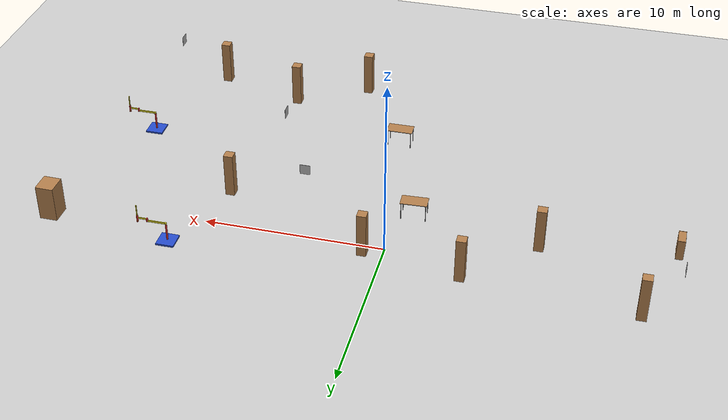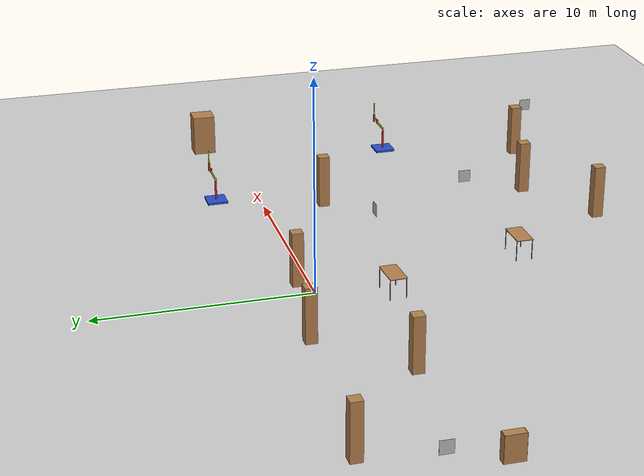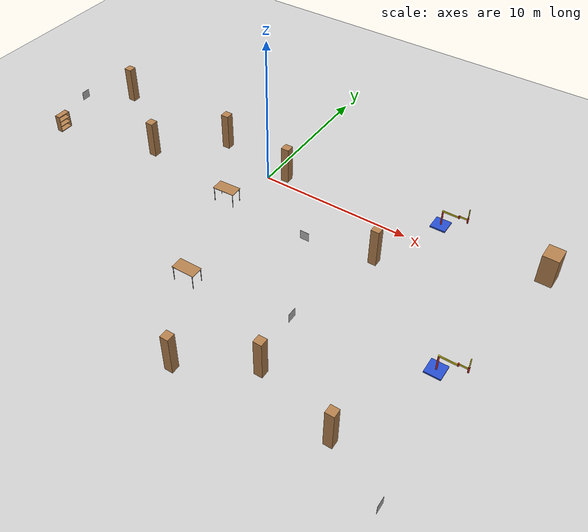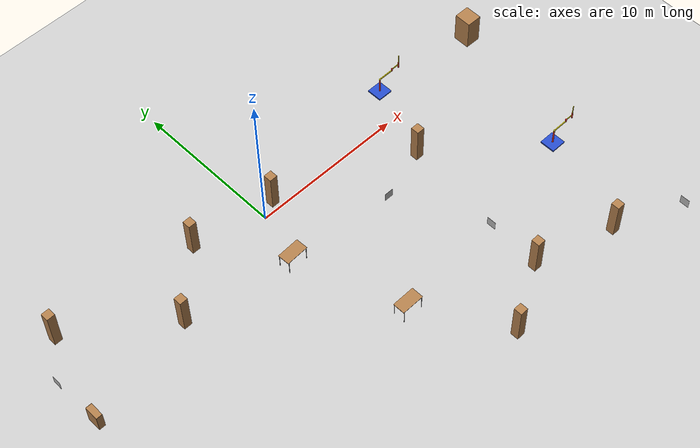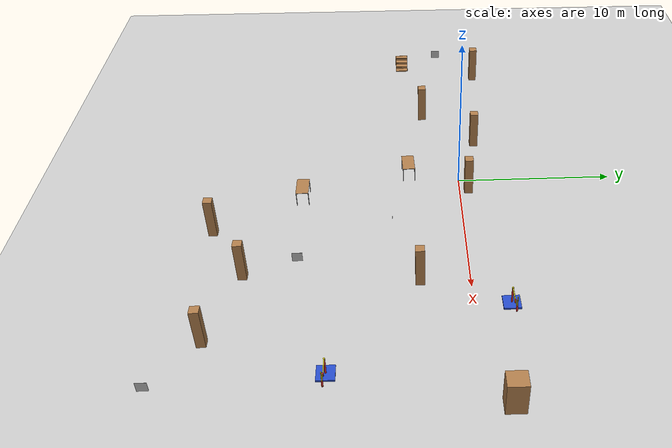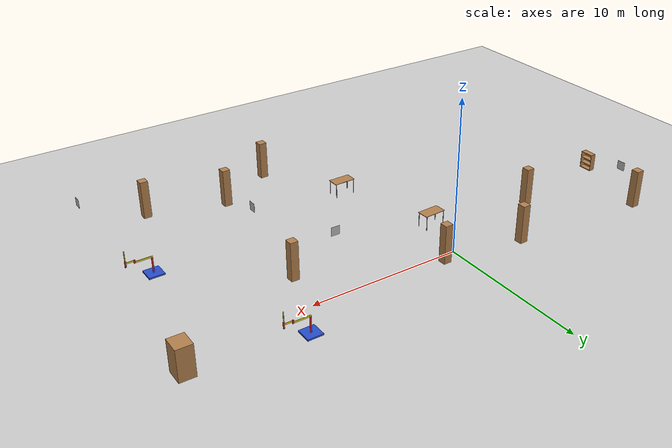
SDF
<sdf version="1.7">
 <world name="default">
  <model name="ground_plane">
   <static>1</static>
   <link name="link">
    <collision name="collision">
     <geometry><plane><normal>0 0 1</normal><size>25 25</size></plane></geometry>
     <surface><friction><ode><mu>100</mu><mu2>50</mu2></ode></friction></surface>
    </collision>
    <visual name="visual">
     <cast_shadows>0</cast_shadows>
     <geometry><plane><normal>0 0 1</normal><size>25 25</size></plane></geometry>
     <material>
      <script><uri>file://media/materials/scripts/gazebo.material</uri><name>Gazebo/Grey</name></script>
     </material>
    </visual>
   </link>
   <link name="startflag">
    <pose>0 0 0.115 0 -0 0</pose>
    <inertial>
     <mass>0.39</mass>
     <inertia><ixx>0.00058</ixx><ixy>0</ixy><ixz>0</ixz><iyy>0.00058</iyy><iyz>0</iyz><izz>0.00019</izz></inertia>
    </inertial>
    <collision name="collision"><geometry><box><size>1 1 0.01</size></box></geometry></collision>
    <visual name="visual">
     <geometry><box><size>1 1 0.01</size></box></geometry>
     <material>
      <script>
       <uri>model://apriltag/materials/scripts</uri>
       <uri>model://apriltag/materials/textures</uri>
       <name>startflag/Diffuse</name>
      </script>
     </material>
    </visual>
   </link>
  </model>
  <model name="table">
   <static>0</static>
   <link name="link">
    <collision name="surface">
     <pose>0 0 1 0 -0 0</pose>
     <geometry><box><size>1.5 0.8 0.03</size></box></geometry>
     <surface><friction><ode><mu>0.6</mu><mu2>0.6</mu2></ode></friction></surface>
    </collision>
    <visual name="visual1">
     <pose>0 0 1 0 -0 0</pose>
     <geometry><box><size>1.5 0.8 0.03</size></box></geometry>
     <material>
      <script><uri>file://media/materials/scripts/gazebo.material</uri><name>Gazebo/Wood</name></script>
     </material>
    </visual>
    <collision name="front_left_leg">
     <pose>0.68 0.38 0.5 0 -0 0</pose>
     <geometry><cylinder><radius>0.02</radius><length>1</length></cylinder></geometry>
    </collision>
    <visual name="front_left_leg">
     <pose>0.68 0.38 0.5 0 -0 0</pose>
     <geometry><cylinder><radius>0.02</radius><length>1</length></cylinder></geometry>
     <material>
      <script><uri>file://media/materials/scripts/gazebo.material</uri><name>Gazebo/Grey</name></script>
     </material>
    </visual>
    <collision name="front_right_leg">
     <pose>0.68 -0.38 0.5 0 -0 0</pose>
     <geometry><cylinder><radius>0.02</radius><length>1</length></cylinder></geometry>
    </collision>
    <visual name="front_right_leg">
     <pose>0.68 -0.38 0.5 0 -0 0</pose>
     <geometry><cylinder><radius>0.02</radius><length>1</length></cylinder></geometry>
     <material>
      <script><uri>file://media/materials/scripts/gazebo.material</uri><name>Gazebo/Grey</name></script>
     </material>
    </visual>
    <collision name="back_right_leg">
     <pose>-0.68 -0.38 0.5 0 -0 0</pose>
     <geometry><cylinder><radius>0.02</radius><length>1</length></cylinder></geometry>
    </collision>
    <visual name="back_right_leg">
     <pose>-0.68 -0.38 0.5 0 -0 0</pose>
     <geometry><cylinder><radius>0.02</radius><length>1</length></cylinder></geometry>
     <material>
      <script><uri>file://media/materials/scripts/gazebo.material</uri><name>Gazebo/Grey</name></script>
     </material>
    </visual>
    <collision name="back_left_leg">
     <pose>-0.68 0.38 0.5 0 -0 0</pose>
     <geometry><cylinder><radius>0.02</radius><length>1</length></cylinder></geometry>
    </collision>
    <visual name="back_left_leg">
     <pose>-0.68 0.38 0.5 0 -0 0</pose>
     <geometry><cylinder><radius>0.02</radius><length>1</length></cylinder></geometry>
     <material>
      <script><uri>file://media/materials/scripts/gazebo.material</uri><name>Gazebo/Grey</name></script>
     </material>
    </visual>
    <inertial>
     <inertia><ixx>1</ixx><ixy>0</ixy><ixz>0</ixz><iyy>1</iyy><iyz>0</iyz><izz>1</izz></inertia>
     <mass>1</mass>
    </inertial>
   </link>
   <pose>-0.865495 -3.31669 -1e-06 0 1e-06 0.048608</pose>
  </model>
  <model name="unit_box_0_clone">
   <pose>1.09392 0.550323 1.29125 0 -1e-06 0.015531</pose>
   <link name="link">
    <inertial>
     <mass>1</mass>
     <inertia>
      <ixx>0.166667</ixx>
      <ixy>0</ixy>
      <ixz>0</ixz>
      <iyy>0.166667</iyy>
      <iyz>0</iyz>
      <izz>0.166667</izz>
     </inertia>
    </inertial>
    <collision name="collision"><geometry><box><size>0.52404 0.528614 2.5825</size></box></geometry></collision>
    <visual name="visual">
     <geometry><box><size>0.52404 0.528614 2.5825</size></box></geometry>
     <material>
      <script><uri>file://media/materials/scripts/gazebo.material</uri><name>Gazebo/Wood</name></script>
     </material>
    </visual>
   </link>
   <static>0</static>
  </model>
  <model name="unit_box_0_clone_2">
   <pose>-7.87568 -2.12895 1.29125 1e-06 1e-06 0.00343</pose>
   <link name="link">
    <inertial>
     <mass>1</mass>
     <inertia>
      <ixx>0.166667</ixx>
      <ixy>0</ixy>
      <ixz>0</ixz>
      <iyy>0.166667</iyy>
      <iyz>0</iyz>
      <izz>0.166667</izz>
     </inertia>
    </inertial>
    <collision name="collision"><geometry><box><size>0.52404 0.528614 2.5825</size></box></geometry></collision>
    <visual name="visual">
     <geometry><box><size>0.52404 0.528614 2.5825</size></box></geometry>
     <material>
      <script><uri>file://media/materials/scripts/gazebo.material</uri><name>Gazebo/Wood</name></script>
     </material>
    </visual>
   </link>
   <static>0</static>
  </model>
  <model name="unit_box_0_clone_3">
   <pose>9.51503 -2.92014 1.29125 1e-06 -0 -0.003339</pose>
   <link name="link">
    <inertial>
     <mass>1</mass>
     <inertia>
      <ixx>0.166667</ixx>
      <ixy>0</ixy>
      <ixz>0</ixz>
      <iyy>0.166667</iyy>
      <iyz>0</iyz>
      <izz>0.166667</izz>
     </inertia>
    </inertial>
    <collision name="collision"><geometry><box><size>0.52404 0.528614 2.5825</size></box></geometry></collision>
    <visual name="visual">
     <geometry><box><size>0.52404 0.528614 2.5825</size></box></geometry>
     <material>
      <script><uri>file://media/materials/scripts/gazebo.material</uri><name>Gazebo/Wood</name></script>
     </material>
    </visual>
   </link>
   <static>0</static>
  </model>
  <model name="static_apriltag_2">
   <link name="link">
    <pose>0 0 0 0 1.57 0</pose>
    <inertial>
     <mass>0.39</mass>
     <inertia><ixx>0.00058</ixx><ixy>0</ixy><ixz>0</ixz><iyy>0.00058</iyy><iyz>0</iyz><izz>0.00019</izz></inertia>
    </inertial>
    <collision name="collision"><geometry><box><size>0.6 0.6 0.01</size></box></geometry></collision>
    <visual name="visual">
     <geometry><box><size>0.6 0.6 0.01</size></box></geometry>
     <material>
      <script>
       <uri>model://apriltag/materials/scripts</uri>
       <uri>model://apriltag/materials/textures</uri>
       <name>apriltag/Diffuse2</name>
      </script>
     </material>
    </visual>
    <gravity>0</gravity>
   </link>
   <pose>17.3807 -16.6611 1.2 0 -0 0</pose>
   <static>0</static>
   <pose>0.80811 0.829943 0 0 -0 0</pose>
  </model>
  <model name="static_apriltag_4">
   <link name="link">
    <pose>0 0 0 0 1.57 0</pose>
    <inertial>
     <mass>0.39</mass>
     <inertia><ixx>0.00058</ixx><ixy>0</ixy><ixz>0</ixz><iyy>0.00058</iyy><iyz>0</iyz><izz>0.00019</izz></inertia>
    </inertial>
    <collision name="collision"><geometry><box><size>0.6 0.6 0.01</size></box></geometry></collision>
    <visual name="visual">
     <geometry><box><size>0.6 0.6 0.01</size></box></geometry>
     <material>
      <script>
       <uri>model://apriltag/materials/scripts</uri>
       <uri>model://apriltag/materials/textures</uri>
       <name>apriltag/Diffuse4</name>
      </script>
     </material>
    </visual>
    <gravity>0</gravity>
   </link>
   <pose>8.38734 -9.90852 1.2 0 -0 0</pose>
   <static>0</static>
   <pose>3.93537 3.29316 0 0 -0 0</pose>
  </model>
  <model name="static_apriltag_6">
   <link name="link">
    <pose>0 0 0 -1.57 1.57 -0</pose>
    <inertial>
     <mass>0.39</mass>
     <inertia><ixx>0.00058</ixx><ixy>0</ixy><ixz>0</ixz><iyy>0.00058</iyy><iyz>0</iyz><izz>0.00019</izz></inertia>
    </inertial>
    <collision name="collision"><geometry><box><size>0.6 0.6 0.01</size></box></geometry></collision>
    <visual name="visual">
     <geometry><box><size>0.6 0.6 0.01</size></box></geometry>
     <material>
      <script>
       <uri>model://apriltag/materials/scripts</uri>
       <uri>model://apriltag/materials/textures</uri>
       <name>apriltag/Diffuse6</name>
      </script>
     </material>
    </visual>
    <gravity>0</gravity>
   </link>
   <pose>5.64278 -4.42191 1.2 0 -0 0</pose>
   <static>0</static>
   <pose>3.43144 4.34187 0 0 -0 0</pose>
  </model>
  <model name="static_apriltag_7">
   <link name="link">
    <pose>0 0 0 0 1.57 0</pose>
    <inertial>
     <mass>0.39</mass>
     <inertia><ixx>0.00058</ixx><ixy>0</ixy><ixz>0</ixz><iyy>0.00058</iyy><iyz>0</iyz><izz>0.00019</izz></inertia>
    </inertial>
    <collision name="collision"><geometry><box><size>0.6 0.6 0.01</size></box></geometry></collision>
    <visual name="visual">
     <geometry><box><size>0.6 0.6 0.01</size></box></geometry>
     <material>
      <script>
       <uri>model://apriltag/materials/scripts</uri>
       <uri>model://apriltag/materials/textures</uri>
       <name>apriltag/Diffuse7</name>
      </script>
     </material>
    </visual>
    <gravity>0</gravity>
   </link>
   <pose>-15.436 -0.772392 1.19904 -1.5708 -0.000796 0</pose>
   <static>0</static>
   <pose>3.12393 4.47604 0 0 -0 0</pose>
  </model>
  <model name="bookshelf">
   <static>1</static>
   <link name="link">
    <inertial><mass>1</mass></inertial>
    <collision name="back">
     <pose>0 0.005 0.6 0 -0 0</pose>
     <geometry><box><size>0.9 0.01 1.2</size></box></geometry>
    </collision>
    <visual name="visual1">
     <pose>0 0.005 0.6 0 -0 0</pose>
     <geometry><box><size>0.9 0.01 1.2</size></box></geometry>
     <material>
      <script><uri>file://media/materials/scripts/gazebo.material</uri><name>Gazebo/Wood</name></script>
     </material>
    </visual>
    <collision name="left_side">
     <pose>0.45 -0.195 0.6 0 -0 0</pose>
     <geometry><box><size>0.02 0.4 1.2</size></box></geometry>
    </collision>
    <visual name="visual2">
     <pose>0.45 -0.195 0.6 0 -0 0</pose>
     <geometry><box><size>0.02 0.4 1.2</size></box></geometry>
     <material>
      <script><uri>file://media/materials/scripts/gazebo.material</uri><name>Gazebo/Wood</name></script>
     </material>
    </visual>
    <collision name="right_side">
     <pose>-0.45 -0.195 0.6 0 -0 0</pose>
     <geometry><box><size>0.02 0.4 1.2</size></box></geometry>
    </collision>
    <visual name="visual3">
     <pose>-0.45 -0.195 0.6 0 -0 0</pose>
     <geometry><box><size>0.02 0.4 1.2</size></box></geometry>
     <material>
      <script><uri>file://media/materials/scripts/gazebo.material</uri><name>Gazebo/Wood</name></script>
     </material>
    </visual>
    <collision name="bottom">
     <pose>0 -0.195 0.03 0 -0 0</pose>
     <geometry><box><size>0.88 0.4 0.06</size></box></geometry>
    </collision>
    <visual name="visual4">
     <pose>0 -0.195 0.03 0 -0 0</pose>
     <geometry><box><size>0.88 0.4 0.06</size></box></geometry>
     <material>
      <script><uri>file://media/materials/scripts/gazebo.material</uri><name>Gazebo/Wood</name></script>
     </material>
    </visual>
    <collision name="top">
     <pose>0 -0.195 1.19 0 -0 0</pose>
     <geometry><box><size>0.88 0.4 0.02</size></box></geometry>
    </collision>
    <visual name="visual5">
     <pose>0 -0.195 1.19 0 -0 0</pose>
     <geometry><box><size>0.88 0.4 0.02</size></box></geometry>
     <material>
      <script><uri>file://media/materials/scripts/gazebo.material</uri><name>Gazebo/Wood</name></script>
     </material>
    </visual>
    <collision name="low_shelf">
     <pose>0 -0.195 0.43 0 -0 0</pose>
     <geometry><box><size>0.88 0.4 0.02</size></box></geometry>
    </collision>
    <visual name="visual6">
     <pose>0 -0.195 0.43 0 -0 0</pose>
     <geometry><box><size>0.88 0.4 0.02</size></box></geometry>
     <material>
      <script><uri>file://media/materials/scripts/gazebo.material</uri><name>Gazebo/Wood</name></script>
     </material>
    </visual>
    <collision name="high_shelf">
     <pose>0 -0.195 0.8 0 -0 0</pose>
     <geometry><box><size>0.88 0.4 0.02</size></box></geometry>
    </collision>
    <visual name="visual7">
     <pose>0 -0.195 0.8 0 -0 0</pose>
     <geometry><box><size>0.88 0.4 0.02</size></box></geometry>
     <material>
      <script><uri>file://media/materials/scripts/gazebo.material</uri><name>Gazebo/Wood</name></script>
     </material>
    </visual>
   </link>
   <pose>-15.3069 -3.46598 0 0 -0 1.57</pose>
  </model>
  <model name="unit_box_clone_clone">
   <pose>18.3733 1.38153 1.01795 1e-06 -1e-06 -0.011633</pose>
   <link name="link">
    <inertial>
     <mass>1</mass>
     <inertia>
      <ixx>0.166667</ixx>
      <ixy>0</ixy>
      <ixz>0</ixz>
      <iyy>0.166667</iyy>
      <iyz>0</iyz>
      <izz>0.166667</izz>
     </inertia>
    </inertial>
    <collision name="collision"><geometry><box><size>1 1.11313 2.03591</size></box></geometry></collision>
    <visual name="visual">
     <geometry><box><size>1 1.11313 2.03591</size></box></geometry>
     <material>
      <script><uri>file://media/materials/scripts/gazebo.material</uri><name>Gazebo/Wood</name></script>
     </material>
    </visual>
   </link>
   <static>0</static>
  </model>
  <model name="unit_box_0_clone_0_clone">
   <pose>8.63211 -13.1105 1.29125 -0 -1e-06 0.006957</pose>
   <link name="link">
    <inertial>
     <mass>1</mass>
     <inertia>
      <ixx>0.166667</ixx>
      <ixy>0</ixy>
      <ixz>0</ixz>
      <iyy>0.166667</iyy>
      <iyz>0</iyz>
      <izz>0.166667</izz>
     </inertia>
    </inertial>
    <collision name="collision"><geometry><box><size>0.52404 0.528614 2.5825</size></box></geometry></collision>
    <visual name="visual">
     <geometry><box><size>0.52404 0.528614 2.5825</size></box></geometry>
     <material>
      <script><uri>file://media/materials/scripts/gazebo.material</uri><name>Gazebo/Wood</name></script>
     </material>
    </visual>
   </link>
   <static>0</static>
  </model>
  <model name="unit_box_0_clone_0_clone_0">
   <pose>4.66327 -15.41 1.29125 1e-06 -2e-06 0.000647</pose>
   <link name="link">
    <inertial>
     <mass>1</mass>
     <inertia>
      <ixx>0.166667</ixx>
      <ixy>0</ixy>
      <ixz>0</ixz>
      <iyy>0.166667</iyy>
      <iyz>0</iyz>
      <izz>0.166667</izz>
     </inertia>
    </inertial>
    <collision name="collision"><geometry><box><size>0.52404 0.528614 2.5825</size></box></geometry></collision>
    <visual name="visual">
     <geometry><box><size>0.52404 0.528614 2.5825</size></box></geometry>
     <material>
      <script><uri>file://media/materials/scripts/gazebo.material</uri><name>Gazebo/Wood</name></script>
     </material>
    </visual>
   </link>
   <static>0</static>
  </model>
  <model name="unit_box_0_clone_0_clone_1">
   <pose>13.667 -14.5952 1.29125 0 1e-06 0.002308</pose>
   <link name="link">
    <inertial>
     <mass>1</mass>
     <inertia>
      <ixx>0.166667</ixx>
      <ixy>0</ixy>
      <ixz>0</ixz>
      <iyy>0.166667</iyy>
      <iyz>0</iyz>
      <izz>0.166667</izz>
     </inertia>
    </inertial>
    <collision name="collision"><geometry><box><size>0.52404 0.528614 2.5825</size></box></geometry></collision>
    <visual name="visual">
     <geometry><box><size>0.52404 0.528614 2.5825</size></box></geometry>
     <material>
      <script><uri>file://media/materials/scripts/gazebo.material</uri><name>Gazebo/Wood</name></script>
     </material>
    </visual>
   </link>
   <static>0</static>
  </model>
  <model name="simple_arm_clone">
   <link name="arm_base">
    <inertial>
     <pose>0 0 0.00099 0 -0 0</pose>
     <inertia><ixx>1.11</ixx><ixy>0</ixy><ixz>0</ixz><iyy>100.11</iyy><iyz>0</iyz><izz>1.01</izz></inertia>
     <mass>101</mass>
    </inertial>
    <collision name="arm_base_geom">
     <pose>0 0 0.05 0 -0 0</pose>
     <geometry><box><size>1 1 0.1</size></box></geometry>
    </collision>
    <visual name="arm_base_geom_visual">
     <pose>0 0 0.05 0 -0 0</pose>
     <geometry><box><size>1 1 0.1</size></box></geometry>
     <material>
      <script><uri>file://media/materials/scripts/gazebo.material</uri><name>Gazebo/Blue</name></script>
     </material>
    </visual>
    <collision name="arm_base_geom_arm_trunk">
     <pose>0 0 0.6 0 -0 0</pose>
     <geometry><cylinder><radius>0.05</radius><length>1</length></cylinder></geometry>
    </collision>
    <visual name="arm_base_geom_arm_trunk_visual">
     <pose>0 0 0.6 0 -0 0</pose>
     <geometry><cylinder><radius>0.05</radius><length>1</length></cylinder></geometry>
     <material>
      <script><uri>file://media/materials/scripts/gazebo.material</uri><name>Gazebo/Red</name></script>
     </material>
    </visual>
   </link>
   <link name="arm_shoulder_pan">
    <pose>0 0 1.1 0 -0 0</pose>
    <inertial>
     <pose>0.045455 0 0 0 -0 0</pose>
     <inertia><ixx>0.011</ixx><ixy>0</ixy><ixz>0</ixz><iyy>0.0225</iyy><iyz>0</iyz><izz>0.0135</izz></inertia>
     <mass>1.1</mass>
    </inertial>
    <collision name="arm_shoulder_pan_geom">
     <pose>0 0 0.05 0 -0 0</pose>
     <geometry><cylinder><radius>0.05</radius><length>0.1</length></cylinder></geometry>
    </collision>
    <visual name="arm_shoulder_pan_geom_visual">
     <pose>0 0 0.05 0 -0 0</pose>
     <geometry><cylinder><radius>0.05</radius><length>0.1</length></cylinder></geometry>
     <material>
      <script><uri>file://media/materials/scripts/gazebo.material</uri><name>Gazebo/Yellow</name></script>
     </material>
    </visual>
    <collision name="arm_shoulder_pan_geom_arm_shoulder">
     <pose>0.55 0 0.05 0 -0 0</pose>
     <geometry><box><size>1 0.05 0.1</size></box></geometry>
    </collision>
    <visual name="arm_shoulder_pan_geom_arm_shoulder_visual">
     <pose>0.55 0 0.05 0 -0 0</pose>
     <geometry><box><size>1 0.05 0.1</size></box></geometry>
     <material>
      <script><uri>file://media/materials/scripts/gazebo.material</uri><name>Gazebo/Yellow</name></script>
     </material>
    </visual>
   </link>
   <link name="arm_elbow_pan">
    <pose>1.05 0 1.1 0 -0 0</pose>
    <inertial>
     <pose>0.0875 0 0.083333 0 -0 0</pose>
     <inertia>
      <ixx>0.031</ixx>
      <ixy>0</ixy>
      <ixz>0.005</ixz>
      <iyy>0.07275</iyy>
      <iyz>0</iyz>
      <izz>0.04475</izz>
     </inertia>
     <mass>1.2</mass>
    </inertial>
    <collision name="arm_elbow_pan_geom">
     <pose>0 0 0.1 0 -0 0</pose>
     <geometry><cylinder><radius>0.05</radius><length>0.2</length></cylinder></geometry>
    </collision>
    <visual name="arm_elbow_pan_geom_visual">
     <pose>0 0 0.1 0 -0 0</pose>
     <geometry><cylinder><radius>0.05</radius><length>0.2</length></cylinder></geometry>
     <material>
      <script><uri>file://media/materials/scripts/gazebo.material</uri><name>Gazebo/Red</name></script>
     </material>
    </visual>
    <collision name="arm_elbow_pan_geom_arm_elbow">
     <pose>0.3 0 0.15 0 -0 0</pose>
     <geometry><box><size>0.5 0.03 0.1</size></box></geometry>
    </collision>
    <visual name="arm_elbow_pan_geom_arm_elbow_visual">
     <pose>0.3 0 0.15 0 -0 0</pose>
     <geometry><box><size>0.5 0.03 0.1</size></box></geometry>
     <material>
      <script><uri>file://media/materials/scripts/gazebo.material</uri><name>Gazebo/Yellow</name></script>
     </material>
    </visual>
    <collision name="arm_elbow_pan_geom_arm_wrist">
     <pose>0.55 0 0.15 0 -0 0</pose>
     <geometry><cylinder><radius>0.05</radius><length>0.3</length></cylinder></geometry>
    </collision>
    <visual name="arm_elbow_pan_geom_arm_wrist_visual">
     <pose>0.55 0 0.15 0 -0 0</pose>
     <geometry><cylinder><radius>0.05</radius><length>0.3</length></cylinder></geometry>
     <material>
      <script><uri>file://media/materials/scripts/gazebo.material</uri><name>Gazebo/Red</name></script>
     </material>
    </visual>
   </link>
   <link name="arm_wrist_lift">
    <pose>1.6 0 1.05 0 -0 0</pose>
    <inertial>
     <inertia><ixx>0.01</ixx><ixy>0</ixy><ixz>0</ixz><iyy>0.01</iyy><iyz>0</iyz><izz>0.001</izz></inertia>
     <mass>0.1</mass>
    </inertial>
    <collision name="arm_wrist_lift_geom">
     <pose>0 0 0.5 0 -0 0</pose>
     <geometry><cylinder><radius>0.03</radius><length>1</length></cylinder></geometry>
    </collision>
    <visual name="arm_wrist_lift_geom_visual">
     <pose>0 0 0.5 0 -0 0</pose>
     <geometry><cylinder><radius>0.03</radius><length>1</length></cylinder></geometry>
     <material>
      <script><uri>file://media/materials/scripts/gazebo.material</uri><name>Gazebo/Yellow</name></script>
     </material>
    </visual>
   </link>
   <link name="arm_wrist_roll">
    <pose>1.6 0 1 0 -0 0</pose>
    <inertial>
     <inertia><ixx>0.01</ixx><ixy>0</ixy><ixz>0</ixz><iyy>0.01</iyy><iyz>0</iyz><izz>0.001</izz></inertia>
     <mass>0.1</mass>
    </inertial>
    <collision name="arm_wrist_roll_geom">
     <pose>0 0 0.025 0 -0 0</pose>
     <geometry><cylinder><radius>0.05</radius><length>0.05</length></cylinder></geometry>
    </collision>
    <visual name="arm_wrist_roll_geom_visual">
     <pose>0 0 0.025 0 -0 0</pose>
     <geometry><cylinder><radius>0.05</radius><length>0.05</length></cylinder></geometry>
     <material>
      <script><uri>file://media/materials/scripts/gazebo.material</uri><name>Gazebo/Red</name></script>
     </material>
    </visual>
   </link>
   <joint name="arm_shoulder_pan_joint" type="revolute">
    <parent>arm_base</parent>
    <child>arm_shoulder_pan</child>
    <axis>
     <dynamics>
      <damping>1</damping>
      <friction>0</friction>
      <spring_reference>0</spring_reference>
      <spring_stiffness>0</spring_stiffness>
     </dynamics>
     <xyz expressed_in="__model__">0 0 1</xyz>
     <limit><lower>-1e+16</lower><upper>1e+16</upper></limit>
    </axis>
   </joint>
   <joint name="arm_elbow_pan_joint" type="revolute">
    <parent>arm_shoulder_pan</parent>
    <child>arm_elbow_pan</child>
    <axis>
     <dynamics>
      <damping>1</damping>
      <friction>0</friction>
      <spring_reference>0</spring_reference>
      <spring_stiffness>0</spring_stiffness>
     </dynamics>
     <xyz expressed_in="__model__">0 0 1</xyz>
     <limit><lower>-1e+16</lower><upper>1e+16</upper></limit>
    </axis>
   </joint>
   <joint name="arm_wrist_lift_joint" type="prismatic">
    <parent>arm_elbow_pan</parent>
    <child>arm_wrist_lift</child>
    <axis>
     <dynamics>
      <damping>1</damping>
      <friction>0</friction>
      <spring_reference>0</spring_reference>
      <spring_stiffness>0</spring_stiffness>
     </dynamics>
     <limit><lower>-0.8</lower><upper>0.1</upper></limit>
     <xyz expressed_in="__model__">0 0 1</xyz>
    </axis>
   </joint>
   <joint name="arm_wrist_roll_joint" type="revolute">
    <parent>arm_wrist_lift</parent>
    <child>arm_wrist_roll</child>
    <axis>
     <dynamics>
      <damping>1</damping>
      <friction>0</friction>
      <spring_reference>0</spring_reference>
      <spring_stiffness>0</spring_stiffness>
     </dynamics>
     <limit><lower>-2.99999</lower><upper>2.99999</upper></limit>
     <xyz expressed_in="__model__">0 0 1</xyz>
    </axis>
   </joint>
   <pose>11.401 2.11211 -0 0 -0 0.003088</pose>
  </model>
  <model name="simple_arm_clone_0">
   <link name="arm_base">
    <inertial>
     <pose>0 0 0.00099 0 -0 0</pose>
     <inertia><ixx>1.11</ixx><ixy>0</ixy><ixz>0</ixz><iyy>100.11</iyy><iyz>0</iyz><izz>1.01</izz></inertia>
     <mass>101</mass>
    </inertial>
    <collision name="arm_base_geom">
     <pose>0 0 0.05 0 -0 0</pose>
     <geometry><box><size>1 1 0.1</size></box></geometry>
    </collision>
    <visual name="arm_base_geom_visual">
     <pose>0 0 0.05 0 -0 0</pose>
     <geometry><box><size>1 1 0.1</size></box></geometry>
     <material>
      <script><uri>file://media/materials/scripts/gazebo.material</uri><name>Gazebo/Blue</name></script>
     </material>
    </visual>
    <collision name="arm_base_geom_arm_trunk">
     <pose>0 0 0.6 0 -0 0</pose>
     <geometry><cylinder><radius>0.05</radius><length>1</length></cylinder></geometry>
    </collision>
    <visual name="arm_base_geom_arm_trunk_visual">
     <pose>0 0 0.6 0 -0 0</pose>
     <geometry><cylinder><radius>0.05</radius><length>1</length></cylinder></geometry>
     <material>
      <script><uri>file://media/materials/scripts/gazebo.material</uri><name>Gazebo/Red</name></script>
     </material>
    </visual>
   </link>
   <link name="arm_shoulder_pan">
    <pose>0 0 1.1 0 -0 0</pose>
    <inertial>
     <pose>0.045455 0 0 0 -0 0</pose>
     <inertia><ixx>0.011</ixx><ixy>0</ixy><ixz>0</ixz><iyy>0.0225</iyy><iyz>0</iyz><izz>0.0135</izz></inertia>
     <mass>1.1</mass>
    </inertial>
    <collision name="arm_shoulder_pan_geom">
     <pose>0 0 0.05 0 -0 0</pose>
     <geometry><cylinder><radius>0.05</radius><length>0.1</length></cylinder></geometry>
    </collision>
    <visual name="arm_shoulder_pan_geom_visual">
     <pose>0 0 0.05 0 -0 0</pose>
     <geometry><cylinder><radius>0.05</radius><length>0.1</length></cylinder></geometry>
     <material>
      <script><uri>file://media/materials/scripts/gazebo.material</uri><name>Gazebo/Yellow</name></script>
     </material>
    </visual>
    <collision name="arm_shoulder_pan_geom_arm_shoulder">
     <pose>0.55 0 0.05 0 -0 0</pose>
     <geometry><box><size>1 0.05 0.1</size></box></geometry>
    </collision>
    <visual name="arm_shoulder_pan_geom_arm_shoulder_visual">
     <pose>0.55 0 0.05 0 -0 0</pose>
     <geometry><box><size>1 0.05 0.1</size></box></geometry>
     <material>
      <script><uri>file://media/materials/scripts/gazebo.material</uri><name>Gazebo/Yellow</name></script>
     </material>
    </visual>
   </link>
   <link name="arm_elbow_pan">
    <pose>1.05 0 1.1 0 -0 0</pose>
    <inertial>
     <pose>0.0875 0 0.083333 0 -0 0</pose>
     <inertia>
      <ixx>0.031</ixx>
      <ixy>0</ixy>
      <ixz>0.005</ixz>
      <iyy>0.07275</iyy>
      <iyz>0</iyz>
      <izz>0.04475</izz>
     </inertia>
     <mass>1.2</mass>
    </inertial>
    <collision name="arm_elbow_pan_geom">
     <pose>0 0 0.1 0 -0 0</pose>
     <geometry><cylinder><radius>0.05</radius><length>0.2</length></cylinder></geometry>
    </collision>
    <visual name="arm_elbow_pan_geom_visual">
     <pose>0 0 0.1 0 -0 0</pose>
     <geometry><cylinder><radius>0.05</radius><length>0.2</length></cylinder></geometry>
     <material>
      <script><uri>file://media/materials/scripts/gazebo.material</uri><name>Gazebo/Red</name></script>
     </material>
    </visual>
    <collision name="arm_elbow_pan_geom_arm_elbow">
     <pose>0.3 0 0.15 0 -0 0</pose>
     <geometry><box><size>0.5 0.03 0.1</size></box></geometry>
    </collision>
    <visual name="arm_elbow_pan_geom_arm_elbow_visual">
     <pose>0.3 0 0.15 0 -0 0</pose>
     <geometry><box><size>0.5 0.03 0.1</size></box></geometry>
     <material>
      <script><uri>file://media/materials/scripts/gazebo.material</uri><name>Gazebo/Yellow</name></script>
     </material>
    </visual>
    <collision name="arm_elbow_pan_geom_arm_wrist">
     <pose>0.55 0 0.15 0 -0 0</pose>
     <geometry><cylinder><radius>0.05</radius><length>0.3</length></cylinder></geometry>
    </collision>
    <visual name="arm_elbow_pan_geom_arm_wrist_visual">
     <pose>0.55 0 0.15 0 -0 0</pose>
     <geometry><cylinder><radius>0.05</radius><length>0.3</length></cylinder></geometry>
     <material>
      <script><uri>file://media/materials/scripts/gazebo.material</uri><name>Gazebo/Red</name></script>
     </material>
    </visual>
   </link>
   <link name="arm_wrist_lift">
    <pose>1.6 0 1.05 0 -0 0</pose>
    <inertial>
     <inertia><ixx>0.01</ixx><ixy>0</ixy><ixz>0</ixz><iyy>0.01</iyy><iyz>0</iyz><izz>0.001</izz></inertia>
     <mass>0.1</mass>
    </inertial>
    <collision name="arm_wrist_lift_geom">
     <pose>0 0 0.5 0 -0 0</pose>
     <geometry><cylinder><radius>0.03</radius><length>1</length></cylinder></geometry>
    </collision>
    <visual name="arm_wrist_lift_geom_visual">
     <pose>0 0 0.5 0 -0 0</pose>
     <geometry><cylinder><radius>0.03</radius><length>1</length></cylinder></geometry>
     <material>
      <script><uri>file://media/materials/scripts/gazebo.material</uri><name>Gazebo/Yellow</name></script>
     </material>
    </visual>
   </link>
   <link name="arm_wrist_roll">
    <pose>1.6 0 1 0 -0 0</pose>
    <inertial>
     <inertia><ixx>0.01</ixx><ixy>0</ixy><ixz>0</ixz><iyy>0.01</iyy><iyz>0</iyz><izz>0.001</izz></inertia>
     <mass>0.1</mass>
    </inertial>
    <collision name="arm_wrist_roll_geom">
     <pose>0 0 0.025 0 -0 0</pose>
     <geometry><cylinder><radius>0.05</radius><length>0.05</length></cylinder></geometry>
    </collision>
    <visual name="arm_wrist_roll_geom_visual">
     <pose>0 0 0.025 0 -0 0</pose>
     <geometry><cylinder><radius>0.05</radius><length>0.05</length></cylinder></geometry>
     <material>
      <script><uri>file://media/materials/scripts/gazebo.material</uri><name>Gazebo/Red</name></script>
     </material>
    </visual>
   </link>
   <joint name="arm_shoulder_pan_joint" type="revolute">
    <parent>arm_base</parent>
    <child>arm_shoulder_pan</child>
    <axis>
     <dynamics>
      <damping>1</damping>
      <friction>0</friction>
      <spring_reference>0</spring_reference>
      <spring_stiffness>0</spring_stiffness>
     </dynamics>
     <xyz expressed_in="__model__">0 0 1</xyz>
     <limit><lower>-1e+16</lower><upper>1e+16</upper></limit>
    </axis>
   </joint>
   <joint name="arm_elbow_pan_joint" type="revolute">
    <parent>arm_shoulder_pan</parent>
    <child>arm_elbow_pan</child>
    <axis>
     <dynamics>
      <damping>1</damping>
      <friction>0</friction>
      <spring_reference>0</spring_reference>
      <spring_stiffness>0</spring_stiffness>
     </dynamics>
     <xyz expressed_in="__model__">0 0 1</xyz>
     <limit><lower>-1e+16</lower><upper>1e+16</upper></limit>
    </axis>
   </joint>
   <joint name="arm_wrist_lift_joint" type="prismatic">
    <parent>arm_elbow_pan</parent>
    <child>arm_wrist_lift</child>
    <axis>
     <dynamics>
      <damping>1</damping>
      <friction>0</friction>
      <spring_reference>0</spring_reference>
      <spring_stiffness>0</spring_stiffness>
     </dynamics>
     <limit><lower>-0.8</lower><upper>0.1</upper></limit>
     <xyz expressed_in="__model__">0 0 1</xyz>
    </axis>
   </joint>
   <joint name="arm_wrist_roll_joint" type="revolute">
    <parent>arm_wrist_lift</parent>
    <child>arm_wrist_roll</child>
    <axis>
     <dynamics>
      <damping>1</damping>
      <friction>0</friction>
      <spring_reference>0</spring_reference>
      <spring_stiffness>0</spring_stiffness>
     </dynamics>
     <limit><lower>-2.99999</lower><upper>2.99999</upper></limit>
     <xyz expressed_in="__model__">0 0 1</xyz>
    </axis>
   </joint>
   <pose>15.9711 -7.97637 -0 0 -0 0.003098</pose>
  </model>
  <model name="table_clone_0">
   <static>0</static>
   <link name="link">
    <collision name="surface">
     <pose>0 0 1 0 -0 0</pose>
     <geometry><box><size>1.5 0.8 0.03</size></box></geometry>
     <surface><friction><ode><mu>0.6</mu><mu2>0.6</mu2></ode></friction></surface>
    </collision>
    <visual name="visual1">
     <pose>0 0 1 0 -0 0</pose>
     <geometry><box><size>1.5 0.8 0.03</size></box></geometry>
     <material>
      <script><uri>file://media/materials/scripts/gazebo.material</uri><name>Gazebo/Wood</name></script>
     </material>
    </visual>
    <collision name="front_left_leg">
     <pose>0.68 0.38 0.5 0 -0 0</pose>
     <geometry><cylinder><radius>0.02</radius><length>1</length></cylinder></geometry>
    </collision>
    <visual name="front_left_leg">
     <pose>0.68 0.38 0.5 0 -0 0</pose>
     <geometry><cylinder><radius>0.02</radius><length>1</length></cylinder></geometry>
     <material>
      <script><uri>file://media/materials/scripts/gazebo.material</uri><name>Gazebo/Grey</name></script>
     </material>
    </visual>
    <collision name="front_right_leg">
     <pose>0.68 -0.38 0.5 0 -0 0</pose>
     <geometry><cylinder><radius>0.02</radius><length>1</length></cylinder></geometry>
    </collision>
    <visual name="front_right_leg">
     <pose>0.68 -0.38 0.5 0 -0 0</pose>
     <geometry><cylinder><radius>0.02</radius><length>1</length></cylinder></geometry>
     <material>
      <script><uri>file://media/materials/scripts/gazebo.material</uri><name>Gazebo/Grey</name></script>
     </material>
    </visual>
    <collision name="back_right_leg">
     <pose>-0.68 -0.38 0.5 0 -0 0</pose>
     <geometry><cylinder><radius>0.02</radius><length>1</length></cylinder></geometry>
    </collision>
    <visual name="back_right_leg">
     <pose>-0.68 -0.38 0.5 0 -0 0</pose>
     <geometry><cylinder><radius>0.02</radius><length>1</length></cylinder></geometry>
     <material>
      <script><uri>file://media/materials/scripts/gazebo.material</uri><name>Gazebo/Grey</name></script>
     </material>
    </visual>
    <collision name="back_left_leg">
     <pose>-0.68 0.38 0.5 0 -0 0</pose>
     <geometry><cylinder><radius>0.02</radius><length>1</length></cylinder></geometry>
    </collision>
    <visual name="back_left_leg">
     <pose>-0.68 0.38 0.5 0 -0 0</pose>
     <geometry><cylinder><radius>0.02</radius><length>1</length></cylinder></geometry>
     <material>
      <script><uri>file://media/materials/scripts/gazebo.material</uri><name>Gazebo/Grey</name></script>
     </material>
    </visual>
    <inertial>
     <inertia><ixx>1</ixx><ixy>0</ixy><ixz>0</ixz><iyy>1</iyy><iyz>0</iyz><izz>1</izz></inertia>
     <mass>1</mass>
    </inertial>
   </link>
   <pose>1.45416 -10.1358 -1e-06 -1e-06 1e-06 0.0092</pose>
  </model>
  <model name="unit_box_0_clone_0_clone_2">
   <pose>-4.27622 1.34804 1.29125 -0 -1e-06 0.006857</pose>
   <link name="link">
    <inertial>
     <mass>1</mass>
     <inertia>
      <ixx>0.166667</ixx>
      <ixy>0</ixy>
      <ixz>0</ixz>
      <iyy>0.166667</iyy>
      <iyz>0</iyz>
      <izz>0.166667</izz>
     </inertia>
    </inertial>
    <collision name="collision"><geometry><box><size>0.52404 0.528614 2.5825</size></box></geometry></collision>
    <visual name="visual">
     <geometry><box><size>0.52404 0.528614 2.5825</size></box></geometry>
     <material>
      <script><uri>file://media/materials/scripts/gazebo.material</uri><name>Gazebo/Wood</name></script>
     </material>
    </visual>
   </link>
   <static>0</static>
  </model>
  <model name="unit_box_0_clone_0_clone_3">
   <pose>-13.553 2.08783 1.29125 0 -1e-06 0.006944</pose>
   <link name="link">
    <inertial>
     <mass>1</mass>
     <inertia>
      <ixx>0.166667</ixx>
      <ixy>0</ixy>
      <ixz>0</ixz>
      <iyy>0.166667</iyy>
      <iyz>0</iyz>
      <izz>0.166667</izz>
     </inertia>
    </inertial>
    <collision name="collision"><geometry><box><size>0.52404 0.528614 2.5825</size></box></geometry></collision>
    <visual name="visual">
     <geometry><box><size>0.52404 0.528614 2.5825</size></box></geometry>
     <material>
      <script><uri>file://media/materials/scripts/gazebo.material</uri><name>Gazebo/Wood</name></script>
     </material>
    </visual>
   </link>
   <static>0</static>
  </model>
 </world>
</sdf>
